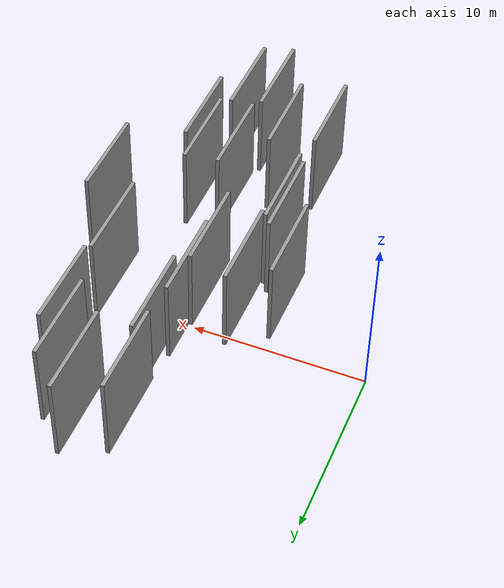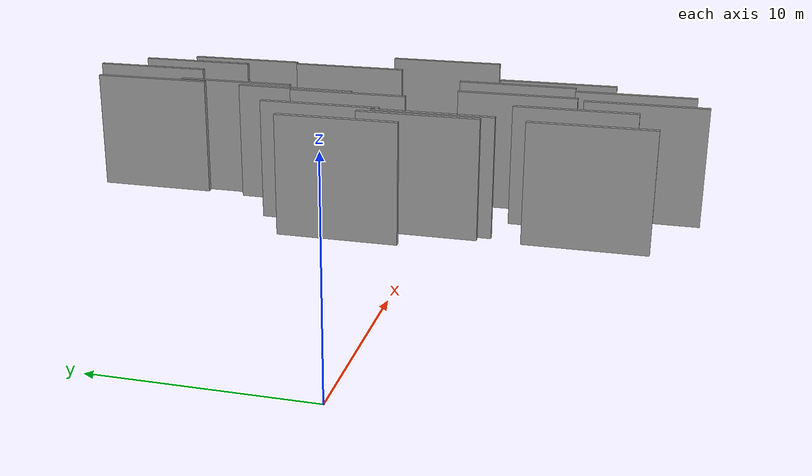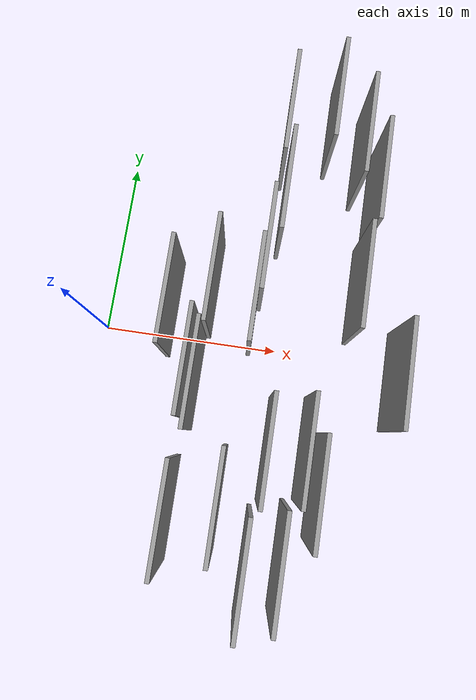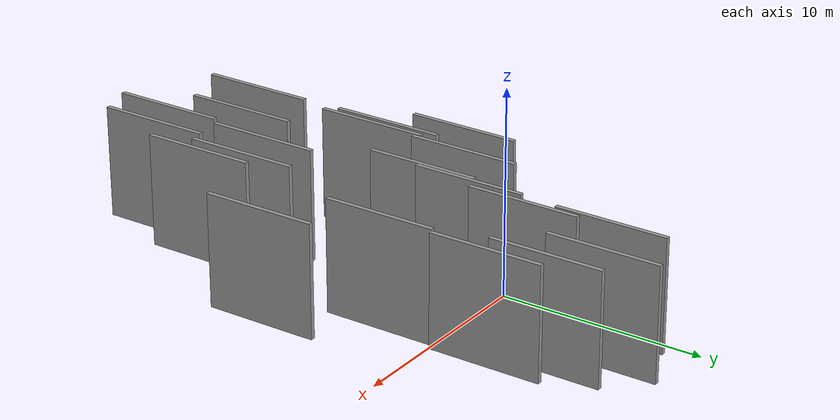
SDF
<sdf version="1.6">
 <world name="default">
  <scene>
   <sky><clouds><speed>12</speed></clouds></sky>
   <ambient>0.4 0.4 0.4 1</ambient>
   <background>0.7 0.7 0.7 1</background>
   <shadows>1</shadows>
  </scene>
  <gravity>0 0 -9.8066</gravity>
  <magnetic_field>6e-06 2.3e-05 -4.2e-05</magnetic_field>
  <physics default="0" name="default_physics" type="ode">
   <ode>
    <solver>
     <type>quick</type>
     <iters>10</iters>
     <sor>1.0</sor>
     <use_dynamic_moi_rescaling>0</use_dynamic_moi_rescaling>
    </solver>
    <constraints>
     <cfm>0</cfm>
     <erp>0.2</erp>
     <contact_max_correcting_vel>100</contact_max_correcting_vel>
     <contact_surface_layer>0.001</contact_surface_layer>
    </constraints>
   </ode>
   <max_step_size>0.004</max_step_size>
   <real_time_factor>1</real_time_factor>
   <real_time_update_rate>250</real_time_update_rate>
  </physics>
  <light name="sun" type="directional">
   <pose>0 0 10 0 0 0</pose>
   <diffuse>0.8 0.8 0.8 1</diffuse>
   <specular>0.2 0.2 0.2 1</specular>
   <attenuation>
    <range>1000</range>
    <constant>0.9</constant>
    <linear>0.01</linear>
    <quadratic>0.001</quadratic>
   </attenuation>
   <direction>-0.5 0.1 -0.9</direction>
  </light>
  <model name="grey_wall_1">
   <static>1</static>
   <pose>6.3868 2.0063 5.0 0.000000 0.000000 1.570796</pose>
   <link name="link">
    <pose>0 0 2.50 0 0 0</pose>
    <collision name="collision"><geometry><box><size>5.00 0.2 5.00</size></box></geometry></collision>
    <visual name="visual">
     <cast_shadows>0</cast_shadows>
     <geometry><box><size>5.00 0.2 5.00</size></box></geometry>
     <material>
      <script>
       <uri>model://grey_wall/materials/scripts</uri>
       <uri>model://grey_wall/materials/textures</uri>
       <name>vrc/grey_wall</name>
      </script>
     </material>
    </visual>
   </link>
  </model>
  <model name="grey_wall_2">
   <static>1</static>
   <pose>5.8260 -8.9504 5.0 0.000000 0.000000 1.570796</pose>
   <link name="link">
    <pose>0 0 2.50 0 0 0</pose>
    <collision name="collision"><geometry><box><size>5.00 0.2 5.00</size></box></geometry></collision>
    <visual name="visual">
     <cast_shadows>0</cast_shadows>
     <geometry><box><size>5.00 0.2 5.00</size></box></geometry>
     <material>
      <script>
       <uri>model://grey_wall/materials/scripts</uri>
       <uri>model://grey_wall/materials/textures</uri>
       <name>vrc/grey_wall</name>
      </script>
     </material>
    </visual>
   </link>
  </model>
  <model name="grey_wall_3">
   <static>1</static>
   <pose>12.6274 9.8577 5.0 0.000000 0.000000 1.570796</pose>
   <link name="link">
    <pose>0 0 2.50 0 0 0</pose>
    <collision name="collision"><geometry><box><size>5.00 0.2 5.00</size></box></geometry></collision>
    <visual name="visual">
     <cast_shadows>0</cast_shadows>
     <geometry><box><size>5.00 0.2 5.00</size></box></geometry>
     <material>
      <script>
       <uri>model://grey_wall/materials/scripts</uri>
       <uri>model://grey_wall/materials/textures</uri>
       <name>vrc/grey_wall</name>
      </script>
     </material>
    </visual>
   </link>
  </model>
  <model name="grey_wall_4">
   <static>1</static>
   <pose>13.5132 7.7498 5.0 0.000000 0.000000 1.570796</pose>
   <link name="link">
    <pose>0 0 2.50 0 0 0</pose>
    <collision name="collision"><geometry><box><size>5.00 0.2 5.00</size></box></geometry></collision>
    <visual name="visual">
     <cast_shadows>0</cast_shadows>
     <geometry><box><size>5.00 0.2 5.00</size></box></geometry>
     <material>
      <script>
       <uri>model://grey_wall/materials/scripts</uri>
       <uri>model://grey_wall/materials/textures</uri>
       <name>vrc/grey_wall</name>
      </script>
     </material>
    </visual>
   </link>
  </model>
  <model name="grey_wall_5">
   <static>1</static>
   <pose>6.1517 -2.7181 5.0 0.000000 0.000000 1.570796</pose>
   <link name="link">
    <pose>0 0 2.50 0 0 0</pose>
    <collision name="collision"><geometry><box><size>5.00 0.2 5.00</size></box></geometry></collision>
    <visual name="visual">
     <cast_shadows>0</cast_shadows>
     <geometry><box><size>5.00 0.2 5.00</size></box></geometry>
     <material>
      <script>
       <uri>model://grey_wall/materials/scripts</uri>
       <uri>model://grey_wall/materials/textures</uri>
       <name>vrc/grey_wall</name>
      </script>
     </material>
    </visual>
   </link>
  </model>
  <model name="grey_wall_6">
   <static>1</static>
   <pose>8.8616 10.4589 5.0 0.000000 0.000000 1.570796</pose>
   <link name="link">
    <pose>0 0 2.50 0 0 0</pose>
    <collision name="collision"><geometry><box><size>5.00 0.2 5.00</size></box></geometry></collision>
    <visual name="visual">
     <cast_shadows>0</cast_shadows>
     <geometry><box><size>5.00 0.2 5.00</size></box></geometry>
     <material>
      <script>
       <uri>model://grey_wall/materials/scripts</uri>
       <uri>model://grey_wall/materials/textures</uri>
       <name>vrc/grey_wall</name>
      </script>
     </material>
    </visual>
   </link>
  </model>
  <model name="grey_wall_7">
   <static>1</static>
   <pose>4.4778 0.7509 5.0 0.000000 0.000000 1.570796</pose>
   <link name="link">
    <pose>0 0 2.50 0 0 0</pose>
    <collision name="collision"><geometry><box><size>5.00 0.2 5.00</size></box></geometry></collision>
    <visual name="visual">
     <cast_shadows>0</cast_shadows>
     <geometry><box><size>5.00 0.2 5.00</size></box></geometry>
     <material>
      <script>
       <uri>model://grey_wall/materials/scripts</uri>
       <uri>model://grey_wall/materials/textures</uri>
       <name>vrc/grey_wall</name>
      </script>
     </material>
    </visual>
   </link>
  </model>
  <model name="grey_wall_8">
   <static>1</static>
   <pose>11.6967 -5.2718 5.0 0.000000 0.000000 1.570796</pose>
   <link name="link">
    <pose>0 0 2.50 0 0 0</pose>
    <collision name="collision"><geometry><box><size>5.00 0.2 5.00</size></box></geometry></collision>
    <visual name="visual">
     <cast_shadows>0</cast_shadows>
     <geometry><box><size>5.00 0.2 5.00</size></box></geometry>
     <material>
      <script>
       <uri>model://grey_wall/materials/scripts</uri>
       <uri>model://grey_wall/materials/textures</uri>
       <name>vrc/grey_wall</name>
      </script>
     </material>
    </visual>
   </link>
  </model>
  <model name="grey_wall_9">
   <static>1</static>
   <pose>5.7687 -2.1987 5.0 0.000000 0.000000 1.570796</pose>
   <link name="link">
    <pose>0 0 2.50 0 0 0</pose>
    <collision name="collision"><geometry><box><size>5.00 0.2 5.00</size></box></geometry></collision>
    <visual name="visual">
     <cast_shadows>0</cast_shadows>
     <geometry><box><size>5.00 0.2 5.00</size></box></geometry>
     <material>
      <script>
       <uri>model://grey_wall/materials/scripts</uri>
       <uri>model://grey_wall/materials/textures</uri>
       <name>vrc/grey_wall</name>
      </script>
     </material>
    </visual>
   </link>
  </model>
  <model name="grey_wall_10">
   <static>1</static>
   <pose>8.0765 -8.1144 5.0 0.000000 0.000000 1.570796</pose>
   <link name="link">
    <pose>0 0 2.50 0 0 0</pose>
    <collision name="collision"><geometry><box><size>5.00 0.2 5.00</size></box></geometry></collision>
    <visual name="visual">
     <cast_shadows>0</cast_shadows>
     <geometry><box><size>5.00 0.2 5.00</size></box></geometry>
     <material>
      <script>
       <uri>model://grey_wall/materials/scripts</uri>
       <uri>model://grey_wall/materials/textures</uri>
       <name>vrc/grey_wall</name>
      </script>
     </material>
    </visual>
   </link>
  </model>
  <model name="grey_wall_11">
   <static>1</static>
   <pose>15.5094 -1.4286 5.0 0.000000 0.000000 1.570796</pose>
   <link name="link">
    <pose>0 0 2.50 0 0 0</pose>
    <collision name="collision"><geometry><box><size>5.00 0.2 5.00</size></box></geometry></collision>
    <visual name="visual">
     <cast_shadows>0</cast_shadows>
     <geometry><box><size>5.00 0.2 5.00</size></box></geometry>
     <material>
      <script>
       <uri>model://grey_wall/materials/scripts</uri>
       <uri>model://grey_wall/materials/textures</uri>
       <name>vrc/grey_wall</name>
      </script>
     </material>
    </visual>
   </link>
  </model>
  <model name="grey_wall_12">
   <static>1</static>
   <pose>12.3843 -6.9498 5.0 0.000000 0.000000 1.570796</pose>
   <link name="link">
    <pose>0 0 2.50 0 0 0</pose>
    <collision name="collision"><geometry><box><size>5.00 0.2 5.00</size></box></geometry></collision>
    <visual name="visual">
     <cast_shadows>0</cast_shadows>
     <geometry><box><size>5.00 0.2 5.00</size></box></geometry>
     <material>
      <script>
       <uri>model://grey_wall/materials/scripts</uri>
       <uri>model://grey_wall/materials/textures</uri>
       <name>vrc/grey_wall</name>
      </script>
     </material>
    </visual>
   </link>
  </model>
  <model name="grey_wall_13">
   <static>1</static>
   <pose>9.5960 -10.8021 5.0 0.000000 0.000000 1.570796</pose>
   <link name="link">
    <pose>0 0 2.50 0 0 0</pose>
    <collision name="collision"><geometry><box><size>5.00 0.2 5.00</size></box></geometry></collision>
    <visual name="visual">
     <cast_shadows>0</cast_shadows>
     <geometry><box><size>5.00 0.2 5.00</size></box></geometry>
     <material>
      <script>
       <uri>model://grey_wall/materials/scripts</uri>
       <uri>model://grey_wall/materials/textures</uri>
       <name>vrc/grey_wall</name>
      </script>
     </material>
    </visual>
   </link>
  </model>
  <model name="grey_wall_14">
   <static>1</static>
   <pose>9.9430 -5.5267 5.0 0.000000 0.000000 1.570796</pose>
   <link name="link">
    <pose>0 0 2.50 0 0 0</pose>
    <collision name="collision"><geometry><box><size>5.00 0.2 5.00</size></box></geometry></collision>
    <visual name="visual">
     <cast_shadows>0</cast_shadows>
     <geometry><box><size>5.00 0.2 5.00</size></box></geometry>
     <material>
      <script>
       <uri>model://grey_wall/materials/scripts</uri>
       <uri>model://grey_wall/materials/textures</uri>
       <name>vrc/grey_wall</name>
      </script>
     </material>
    </visual>
   </link>
  </model>
  <model name="grey_wall_15">
   <static>1</static>
   <pose>8.4830 1.4118 5.0 0.000000 0.000000 1.570796</pose>
   <link name="link">
    <pose>0 0 2.50 0 0 0</pose>
    <collision name="collision"><geometry><box><size>5.00 0.2 5.00</size></box></geometry></collision>
    <visual name="visual">
     <cast_shadows>0</cast_shadows>
     <geometry><box><size>5.00 0.2 5.00</size></box></geometry>
     <material>
      <script>
       <uri>model://grey_wall/materials/scripts</uri>
       <uri>model://grey_wall/materials/textures</uri>
       <name>vrc/grey_wall</name>
      </script>
     </material>
    </visual>
   </link>
  </model>
  <model name="grey_wall_16">
   <static>1</static>
   <pose>13.2514 2.6789 5.0 0.000000 0.000000 1.570796</pose>
   <link name="link">
    <pose>0 0 2.50 0 0 0</pose>
    <collision name="collision"><geometry><box><size>5.00 0.2 5.00</size></box></geometry></collision>
    <visual name="visual">
     <cast_shadows>0</cast_shadows>
     <geometry><box><size>5.00 0.2 5.00</size></box></geometry>
     <material>
      <script>
       <uri>model://grey_wall/materials/scripts</uri>
       <uri>model://grey_wall/materials/textures</uri>
       <name>vrc/grey_wall</name>
      </script>
     </material>
    </visual>
   </link>
  </model>
  <model name="grey_wall_17">
   <static>1</static>
   <pose>11.1372 -10.3055 5.0 0.000000 0.000000 1.570796</pose>
   <link name="link">
    <pose>0 0 2.50 0 0 0</pose>
    <collision name="collision"><geometry><box><size>5.00 0.2 5.00</size></box></geometry></collision>
    <visual name="visual">
     <cast_shadows>0</cast_shadows>
     <geometry><box><size>5.00 0.2 5.00</size></box></geometry>
     <material>
      <script>
       <uri>model://grey_wall/materials/scripts</uri>
       <uri>model://grey_wall/materials/textures</uri>
       <name>vrc/grey_wall</name>
      </script>
     </material>
    </visual>
   </link>
  </model>
  <model name="grey_wall_18">
   <static>1</static>
   <pose>8.6860 3.7910 5.0 0.000000 0.000000 1.570796</pose>
   <link name="link">
    <pose>0 0 2.50 0 0 0</pose>
    <collision name="collision"><geometry><box><size>5.00 0.2 5.00</size></box></geometry></collision>
    <visual name="visual">
     <cast_shadows>0</cast_shadows>
     <geometry><box><size>5.00 0.2 5.00</size></box></geometry>
     <material>
      <script>
       <uri>model://grey_wall/materials/scripts</uri>
       <uri>model://grey_wall/materials/textures</uri>
       <name>vrc/grey_wall</name>
      </script>
     </material>
    </visual>
   </link>
  </model>
  <model name="grey_wall_19">
   <static>1</static>
   <pose>11.0534 11.4229 5.0 0.000000 0.000000 1.570796</pose>
   <link name="link">
    <pose>0 0 2.50 0 0 0</pose>
    <collision name="collision"><geometry><box><size>5.00 0.2 5.00</size></box></geometry></collision>
    <visual name="visual">
     <cast_shadows>0</cast_shadows>
     <geometry><box><size>5.00 0.2 5.00</size></box></geometry>
     <material>
      <script>
       <uri>model://grey_wall/materials/scripts</uri>
       <uri>model://grey_wall/materials/textures</uri>
       <name>vrc/grey_wall</name>
      </script>
     </material>
    </visual>
   </link>
  </model>
  <model name="grey_wall_20">
   <static>1</static>
   <pose>9.1830 6.6681 5.0 0.000000 0.000000 1.570796</pose>
   <link name="link">
    <pose>0 0 2.50 0 0 0</pose>
    <collision name="collision"><geometry><box><size>5.00 0.2 5.00</size></box></geometry></collision>
    <visual name="visual">
     <cast_shadows>0</cast_shadows>
     <geometry><box><size>5.00 0.2 5.00</size></box></geometry>
     <material>
      <script>
       <uri>model://grey_wall/materials/scripts</uri>
       <uri>model://grey_wall/materials/textures</uri>
       <name>vrc/grey_wall</name>
      </script>
     </material>
    </visual>
   </link>
  </model>
 </world>
</sdf>
